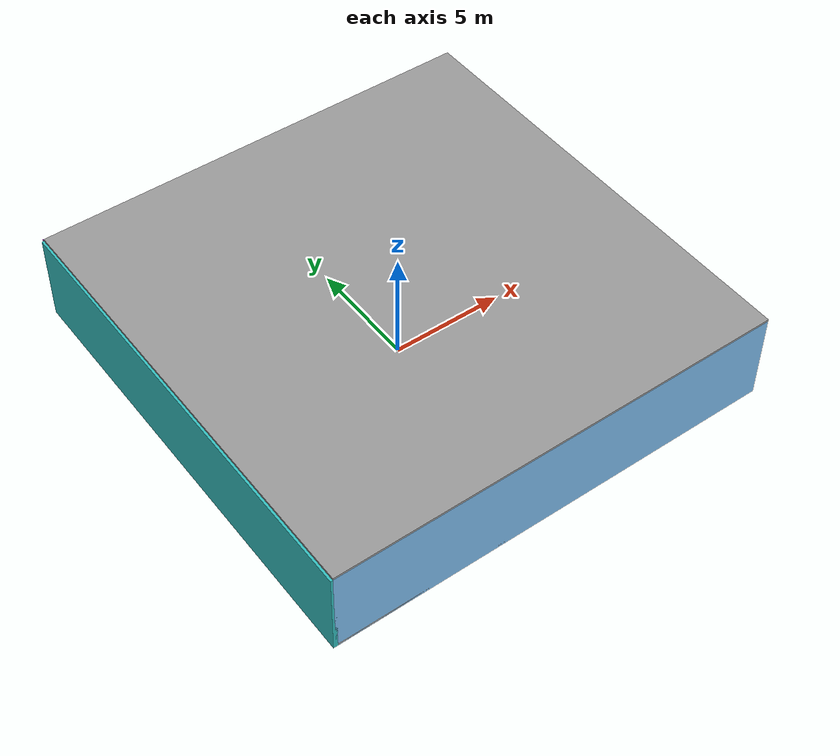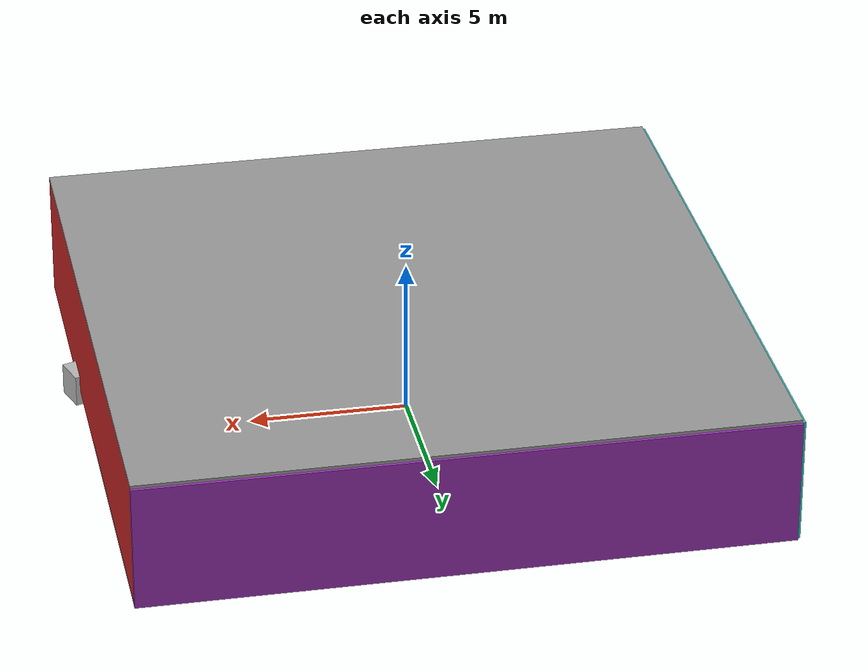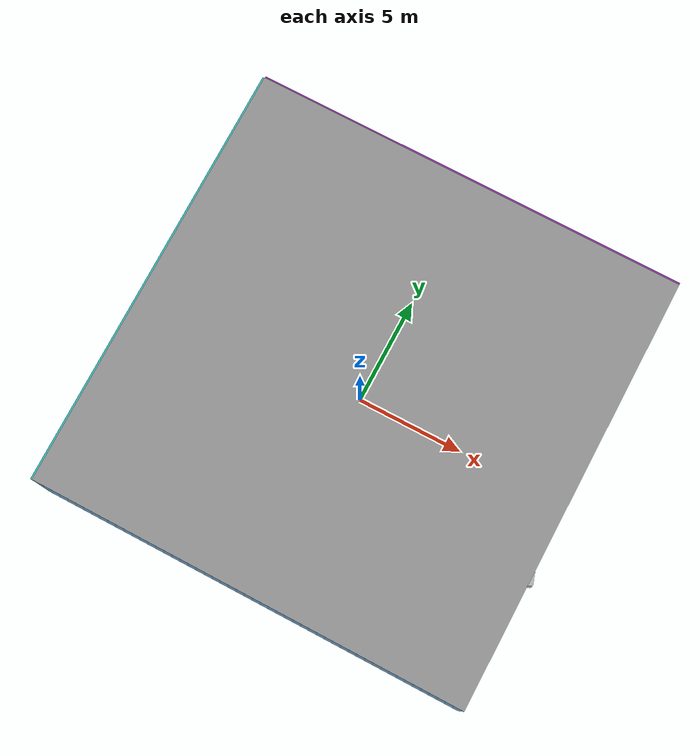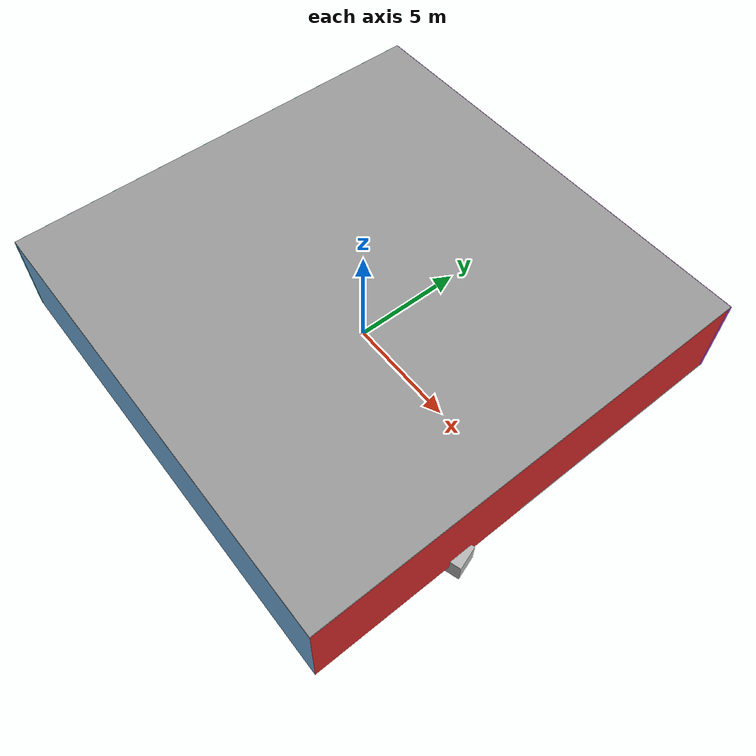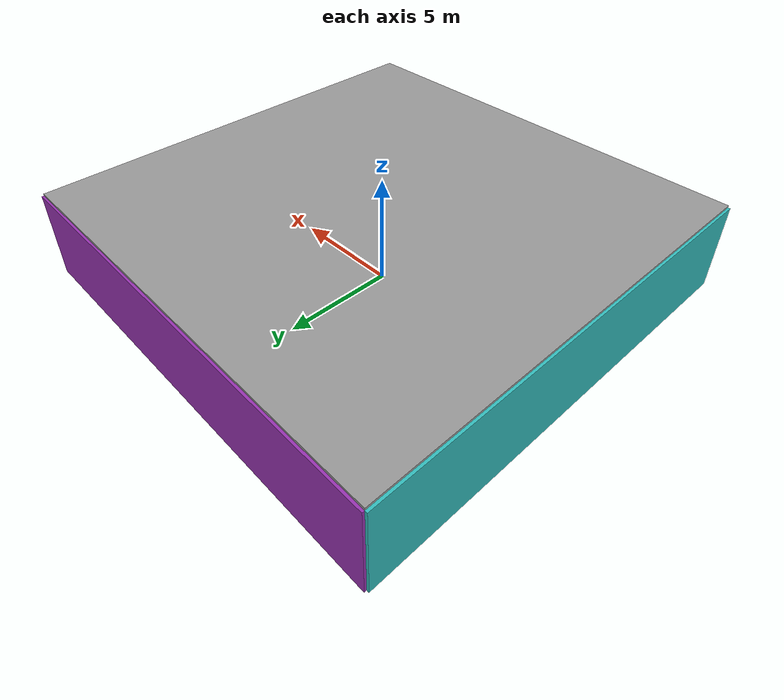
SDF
<sdf version="1.4">
 <world name="default">
  <physics type="ode">
   <max_step_size>0.001</max_step_size>
   <real_time_factor>1</real_time_factor>
   <real_time_update_rate>1000</real_time_update_rate>
   <gravity>0 0 -9.8</gravity>
  </physics>
  <scene><ambient>0.4 0.4 0.4 1</ambient><background>0.7 0.7 0.7 1</background><shadows>1</shadows></scene>
  <model name="Surrounding">
   <static>1</static>
   <link name="Ceiling">
    <collision name="Ceiling_Collision"><geometry><box><size>20 20 0.1</size></box></geometry></collision>
    <visual name="Ceiling_Visual">
     <geometry><box><size>20 20 0.1</size></box></geometry>
     <material>
      <script><uri>file://media/materials/scripts/gazebo.material</uri><name>Gazebo/Grey</name></script>
     </material>
    </visual>
    <pose>0 0 4.05 0 0 0</pose>
   </link>
   <link name="Wall_South">
    <collision name="Wall_South_Collision">
     <geometry><box><size>20 0 4</size></box></geometry>
     <pose>0 0 2 0 -0 0</pose>
    </collision>
    <visual name="Wall_South_Visual">
     <pose>0 0 2 0 -0 0</pose>
     <geometry><box><size>20 0 4</size></box></geometry>
     <material>
      <script><uri>file://media/materials/scripts/gazebo.material</uri><name>Gazebo/SkyBlue</name></script>
     </material>
    </visual>
    <velocity_decay><linear>0</linear><angular>0</angular></velocity_decay>
    <pose>0 -10 0 0 -0 0</pose>
   </link>
   <link name="Wall_East">
    <collision name="Wall_21_Collision">
     <geometry><box><size>20 0 4</size></box></geometry>
     <pose>0 0 2 0 -0 0</pose>
    </collision>
    <visual name="Wall_21_Visual">
     <pose>0 0 2 0 -0 0</pose>
     <geometry><box><size>20 0 4</size></box></geometry>
     <material>
      <script><uri>file://media/materials/scripts/gazebo.material</uri><name>Gazebo/RedGlow</name></script>
     </material>
    </visual>
    <velocity_decay><linear>0</linear><angular>0</angular></velocity_decay>
    <pose>10 0 0 0 -0 1.5708</pose>
   </link>
   <link name="Wall_North">
    <collision name="Wall_22_Collision">
     <geometry><box><size>20 0.2 4</size></box></geometry>
     <pose>0 0 2 0 -0 0</pose>
    </collision>
    <visual name="Wall_22_Visual">
     <pose>0 0 2 0 -0 0</pose>
     <geometry><box><size>20 0.2 4</size></box></geometry>
     <material>
      <script><uri>file://media/materials/scripts/gazebo.material</uri><name>Gazebo/PurpleGlow</name></script>
     </material>
    </visual>
    <velocity_decay><linear>0</linear><angular>0</angular></velocity_decay>
    <pose>0 10 0 0 -0 0</pose>
   </link>
   <link name="Wall_West">
    <collision name="Wall_23_Collision">
     <geometry><box><size>20 0.2 4</size></box></geometry>
     <pose>0 0 2 0 -0 0</pose>
    </collision>
    <visual name="Wall_23_Visual">
     <pose>0 0 2 0 -0 0</pose>
     <geometry><box><size>20 0.2 4</size></box></geometry>
     <material>
      <script><uri>file://media/materials/scripts/gazebo.material</uri><name>Gazebo/Turquoise</name></script>
     </material>
    </visual>
    <velocity_decay><linear>0</linear><angular>0</angular></velocity_decay>
    <pose>-10 0 0 0 0 -1.5708</pose>
   </link>
   <link name="Ground_link">
    <collision name="collision">
     <pose>0 0 .05 0 -0 0</pose>
     <geometry><box><size>20 20 0.1</size></box></geometry>
    </collision>
    <visual name="visual">
     <pose>0 0 .05 0 -0 0</pose>
     <geometry><box><size>20 20 0.1</size></box></geometry>
     <material>
      <script><uri>file://media/materials/scripts/gazebo.material</uri><name>Gazebo/Pioneer2Body</name></script>
     </material>
    </visual>
   </link>
   <static>1</static>
  </model>
  <spherical_coordinates>
   <surface_model>EARTH_WGS84</surface_model>
   <latitude_deg>0</latitude_deg>
   <longitude_deg>0</longitude_deg>
   <elevation>0</elevation>
   <heading_deg>0</heading_deg>
  </spherical_coordinates>
  <light name="lightball_0" type="diffuse">
   <diffuse>0.8 0.8 0.8 1</diffuse>
   <specular>0.2 0.2 0.2 1</specular>
   <attenuation>
    <range>100</range>
    <constant>0.7</constant>
    <linear>0.01</linear>
    <quadratic>0.001</quadratic>
   </attenuation>
   <direction>-0.5 0.1 -0.9</direction>
   <pose>-9.74993155016 -4.28257704943 2.54590768407 0 0 0</pose>
  </light>
  <light name="lightball_1" type="diffuse">
   <diffuse>0.8 0.8 0.8 1</diffuse>
   <specular>0.2 0.2 0.2 1</specular>
   <attenuation>
    <range>100</range>
    <constant>0.7</constant>
    <linear>0.01</linear>
    <quadratic>0.001</quadratic>
   </attenuation>
   <direction>-0.5 0.1 -0.9</direction>
   <pose>9.03772459636 8.22838882377 2.71462581 0 0 0</pose>
  </light>
  <light name="lightball_2" type="diffuse">
   <diffuse>0.8 0.8 0.8 1</diffuse>
   <specular>0.2 0.2 0.2 1</specular>
   <attenuation>
    <range>100</range>
    <constant>0.7</constant>
    <linear>0.01</linear>
    <quadratic>0.001</quadratic>
   </attenuation>
   <direction>-0.5 0.1 -0.9</direction>
   <pose>-3.47267396041 0.706560026569 2.05028984228 0 0 0</pose>
  </light>
  <light name="lightball_3" type="diffuse">
   <diffuse>0.8 0.8 0.8 1</diffuse>
   <specular>0.2 0.2 0.2 1</specular>
   <attenuation>
    <range>100</range>
    <constant>0.7</constant>
    <linear>0.01</linear>
    <quadratic>0.001</quadratic>
   </attenuation>
   <direction>-0.5 0.1 -0.9</direction>
   <pose>2.29032495568 -2.07693481695 3.35826471124 0 0 0</pose>
  </light>
  <light name="lightball_4" type="diffuse">
   <diffuse>0.8 0.8 0.8 1</diffuse>
   <specular>0.2 0.2 0.2 1</specular>
   <attenuation>
    <range>100</range>
    <constant>0.7</constant>
    <linear>0.01</linear>
    <quadratic>0.001</quadratic>
   </attenuation>
   <direction>-0.5 0.1 -0.9</direction>
   <pose>0.866242597534 -5.12262692183 3.71147299633 0 0 0</pose>
  </light>
  <include>
   <uri>model://robocup_3Dsim_goal</uri>
   <pose>-0.571101262761 -7.69070103051 0 0 0 0.234480703572</pose>
  </include>
  <include><uri>model://table</uri><pose>-2.63655247598 1.13683047627 0 0 0 2.00167958669</pose></include>
  <include>
   <uri>model://construction_cone</uri>
   <pose>-1.89287719041 3.42087809336 0 0 0 0.853504511949</pose>
  </include>
  <include>
   <uri>model://textured_shapes</uri>
   <pose>8.38256199133 -3.96175094341 0 0 0 1.87563373015</pose>
  </include>
  <include><uri>model://table</uri><pose>8.51348823793 -1.89767353662 0 0 0 0.701184531133</pose></include>
 </world>
</sdf>

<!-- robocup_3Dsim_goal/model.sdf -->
<sdf version="1.5">
  <model name="robocup_3d_goal">
    <static>true</static>
    <link name="left_post">
      <pose>0 1.05 0.45 0 0 0</pose>
      <collision name="collision">
        <geometry>
          <cylinder>
            <radius>0.05</radius>
            <length>0.9</length>
          </cylinder>
        </geometry>
      </collision>
      <visual name="visual">
        <geometry>
          <cylinder>
            <radius>0.05</radius>
            <length>0.9</length>
          </cylinder>
        </geometry>
        <material>
          <script>
            <uri>file://media/materials/scripts/gazebo.material</uri>
            <name>Gazebo/ZincYellow</name>
          </script>
        </material>
      </visual>
    </link>
    <link name="left_support_horiz_lower">
      <pose>0.30 1.05 0.01 0 0 0</pose>
      <collision name="collision">
        <geometry>
          <box>
            <size>0.50 0.02 0.02</size>
          </box>
        </geometry>
      </collision>
      <visual name="visual">
        <geometry>
          <box>
            <size>0.50 0.02 0.02</size>
          </box>
        </geometry>
        <material>
          <script>
            <uri>file://media/materials/scripts/gazebo.material</uri>
            <name>Gazebo/White</name>
          </script>
        </material>
      </visual>
    </link>
    <link name="left_support_horiz_upper">
      <pose>0.30 1.05 0.79 0 0 0</pose>
      <collision name="collision">
        <geometry>
          <box>
            <size>0.50 0.02 0.02</size>
          </box>
        </geometry>
      </collision>
      <visual name="visual">
        <geometry>
          <box>
            <size>0.50 0.02 0.02</size>
          </box>
        </geometry>
        <material>
          <script>
            <uri>file://media/materials/scripts/gazebo.material</uri>
            <name>Gazebo/White</name>
          </script>
        </material>
      </visual>
    </link>
    <link name="left_support_vertical">
      <pose>0.56 1.05 0.4 0 1.5708 0</pose>
      <collision name="collision">
        <geometry>
          <box>
            <size>0.80 0.02 0.02</size>
          </box>
        </geometry>
      </collision>
      <visual name="visual">
        <geometry>
          <box>
            <size>0.80 0.02 0.02</size>
          </box>
        </geometry>
        <material>
          <script>
            <uri>file://media/materials/scripts/gazebo.material</uri>
            <name>Gazebo/White</name>
          </script>
        </material>
      </visual>
    </link>
    <link name="right_support_horiz_lower">
      <pose>0.30 -1.05 0.01 0 0 0</pose>
      <collision name="collision">
        <geometry>
          <box>
            <size>0.50 0.02 0.02</size>
          </box>
        </geometry>
      </collision>
      <visual name="visual">
        <geometry>
          <box>
            <size>0.50 0.02 0.02</size>
          </box>
        </geometry>
        <material>
          <script>
            <uri>file://media/materials/scripts/gazebo.material</uri>
            <name>Gazebo/White</name>
          </script>
        </material>
      </visual>
    </link>
    <link name="right_support_horiz_upper">
      <pose>0.30 -1.05 0.79 0 0 0</pose>
      <collision name="collision">
        <geometry>
          <box>
            <size>0.50 0.02 0.02</size>
          </box>
        </geometry>
      </collision>
      <visual name="visual">
        <geometry>
          <box>
            <size>0.50 0.02 0.02</size>
          </box>
        </geometry>
        <material>
          <script>
            <uri>file://media/materials/scripts/gazebo.material</uri>
            <name>Gazebo/White</name>
          </script>
        </material>
      </visual>
    </link>
    <link name="right_support_vertical">
      <pose>0.56 -1.05 0.4 0 1.5708 0</pose>
      <collision name="collision">
        <geometry>
          <box>
            <size>0.80 0.02 0.02</size>
          </box>
        </geometry>
      </collision>
      <visual name="visual">
        <geometry>
          <box>
            <size>0.80 0.02 0.02</size>
          </box>
        </geometry>
        <material>
          <script>
            <uri>file://media/materials/scripts/gazebo.material</uri>
            <name>Gazebo/White</name>
          </script>
        </material>
      </visual>
    </link>
    <link name="center_support_horiz_lower">
      <pose>0.56 0 0.01 0 1.5708 0</pose>
      <collision name="collision">
        <geometry>
          <box>
            <size>0.02 2.08 0.02</size>
          </box>
        </geometry>
      </collision>
      <visual name="visual">
        <geometry>
          <box>
            <size>0.02 2.08 0.02</size>
          </box>
        </geometry>
        <material>
          <script>
            <uri>file://media/materials/scripts/gazebo.material</uri>
            <name>Gazebo/White</name>
          </script>
        </material>
      </visual>
    </link>
    <link name="center_support_horiz_upper">
      <pose>0.56 0 0.79 0 1.5708 0</pose>
      <collision name="collision">
        <geometry>
          <box>
            <size>0.02 2.08 0.02</size>
          </box>
        </geometry>
      </collision>
      <visual name="visual">
        <geometry>
          <box>
            <size>0.02 2.08 0.02</size>
          </box>
        </geometry>
        <material>
          <script>
            <uri>file://media/materials/scripts/gazebo.material</uri>
            <name>Gazebo/White</name>
          </script>
        </material>
      </visual>
    </link>
    <link name="right_post">
      <pose>0 -1.05 0.45 0 0 0</pose>
      <collision name="collision">
        <geometry>
          <cylinder>
            <radius>0.05</radius>
            <length>0.9</length>
          </cylinder>
        </geometry>
      </collision>
      <visual name="visual">
        <geometry>
          <cylinder>
            <radius>0.05</radius>
            <length>0.9</length>
          </cylinder>
        </geometry>
        <material>
          <script>
            <uri>file://media/materials/scripts/gazebo.material</uri>
            <name>Gazebo/ZincYellow</name>
          </script>
        </material>
      </visual>
    </link>
    <link name="crossbar">
      <pose>0 0 0.85 1.57 1.57 0</pose>
      <collision name="collision">
        <geometry>
          <cylinder>
            <radius>0.05</radius>
            <length>2.0</length>
          </cylinder>
        </geometry>
      </collision>
      <visual name="visual">
        <geometry>
          <cylinder>
            <radius>0.05</radius>
            <length>2.0</length>
          </cylinder>
        </geometry>
        <material>
          <script>
            <uri>file://media/materials/scripts/gazebo.material</uri>
            <name>Gazebo/ZincYellow</name>
          </script>
        </material>
      </visual>
    </link>
    <link name="center_net">
      <pose>0.56 0 0.40 0 0 0</pose>
      <collision name="collision">
        <geometry>
          <box>
            <size>0.01 2.1 0.80</size>
          </box>
        </geometry>
      </collision>
      <visual name="visual">
        <geometry>
          <box>
            <size>0.01 2.1 0.80</size>
          </box>
        </geometry>
        <material>
          <script>
            <uri>model://../model_source/models/robocup09_spl_field/materials/scripts/</uri>
            <uri>model://../model_source/models/robocup09_spl_field/materials/textures/</uri>
            <name>RoboCup/Net</name>
          </script>
        </material>
      </visual>
    </link>
    <link name="left_net">
      <pose>0.30 1.05 0.40 0 0 0</pose>
      <collision name="collision">
        <geometry>
          <box>
            <size>0.50 0.01 0.76</size>
          </box>
        </geometry>
      </collision>
      <visual name="visual">
        <geometry>
          <box>
            <size>0.50 0.01 0.76</size>
          </box>
        </geometry>
        <material>
          <script>
            <uri>model://../model_source/models/robocup09_spl_field/materials/scripts/</uri>
            <uri>model://../model_source/models/robocup09_spl_field/materials/textures/</uri>
            <name>RoboCup/Net</name>
          </script>
        </material>
      </visual>
    </link>
    <link name="right_net">
      <pose>0.30 -1.05 0.40 0 0 0</pose>
      <collision name="collision">
        <geometry>
          <box>
            <size>0.50 0.01 0.76</size>
          </box>
        </geometry>
      </collision>
      <visual name="visual">
        <geometry>
          <box>
            <size>0.50 0.01 0.76</size>
          </box>
        </geometry>
        <material>
          <script>
            <uri>model://../model_source/models/robocup09_spl_field/materials/scripts/</uri>
            <uri>model://../model_source/models/robocup09_spl_field/materials/textures/</uri>
            <name>RoboCup/Net</name>
          </script>
        </material>
      </visual>
    </link>
  </model>
</sdf>

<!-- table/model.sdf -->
<sdf version="1.5">
  <model name="table">
    <static>true</static>
    <link name="link">
      <collision name="surface">
        <pose>0 0 1.0 0 0 0</pose>
        <geometry>
          <box>
            <size>1.5 0.8 0.03</size>
          </box>
        </geometry>
        <surface>
          <friction>
            <ode>
              <mu>0.6</mu>
              <mu2>0.6</mu2>
            </ode>
          </friction>
        </surface>
      </collision>
      <visual name="visual1">
        <pose>0 0 1.0 0 0 0</pose>
        <geometry>
          <box>
            <size>1.5 0.8 0.03</size>
          </box>
        </geometry>
        <material>
          <script>
            <uri>model://media/materials/scripts/gazebo.material</uri>
            <name>Gazebo/Wood</name>
          </script>
        </material>
      </visual>
      <collision name="front_left_leg">
        <pose>0.68 0.38 0.5 0 0 0</pose>
        <geometry>
          <cylinder>
            <radius>0.02</radius>
            <length>1.0</length>
          </cylinder>
        </geometry>
      </collision>
      <visual name="front_left_leg">
        <pose>0.68 0.38 0.5 0 0 0</pose>
        <geometry>
          <cylinder>
            <radius>0.02</radius>
            <length>1.0</length>
          </cylinder>
        </geometry>
        <material>
          <script>
            <uri>model://media/materials/scripts/gazebo.material</uri>
            <name>Gazebo/Grey</name>
          </script>
        </material>
      </visual>
      <collision name="front_right_leg">
        <pose>0.68 -0.38 0.5 0 0 0</pose>
        <geometry>
          <cylinder>
            <radius>0.02</radius>
            <length>1.0</length>
          </cylinder>
        </geometry>
      </collision>
      <visual name="front_right_leg">
        <pose>0.68 -0.38 0.5 0 0 0</pose>
        <geometry>
          <cylinder>
            <radius>0.02</radius>
            <length>1.0</length>
          </cylinder>
        </geometry>
        <material>
          <script>
            <uri>model://media/materials/scripts/gazebo.material</uri>
            <name>Gazebo/Grey</name>
          </script>
        </material>
      </visual>
      <collision name="back_right_leg">
        <pose>-0.68 -0.38 0.5 0 0 0</pose>
        <geometry>
          <cylinder>
            <radius>0.02</radius>
            <length>1.0</length>
          </cylinder>
        </geometry>
      </collision>
      <visual name="back_right_leg">
        <pose>-0.68 -0.38 0.5 0 0 0</pose>
        <geometry>
          <cylinder>
            <radius>0.02</radius>
            <length>1.0</length>
          </cylinder>
        </geometry>
        <material>
          <script>
            <uri>model://media/materials/scripts/gazebo.material</uri>
            <name>Gazebo/Grey</name>
          </script>
        </material>
      </visual>
      <collision name="back_left_leg">
        <pose>-0.68 0.38 0.5 0 0 0</pose>
        <geometry>
          <cylinder>
            <radius>0.02</radius>
            <length>1.0</length>
          </cylinder>
        </geometry>
      </collision>
      <visual name="back_left_leg">
        <pose>-0.68 0.38 0.5 0 0 0</pose>
        <geometry>
          <cylinder>
            <radius>0.02</radius>
            <length>1.0</length>
          </cylinder>
        </geometry>
        <material>
          <script>
            <uri>model://media/materials/scripts/gazebo.material</uri>
            <name>Gazebo/Grey</name>
          </script>
        </material>
      </visual>
    </link>
  </model>
</sdf>

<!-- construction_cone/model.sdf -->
<sdf version="1.5">
  <model name="Construction Cone">
    <link name="link">
      <collision name="collision">
        <geometry>
          <mesh>
            <scale>10 10 10</scale>
            <uri>file://isr-testbed/construction_cone/meshes/construction_cone.dae</uri>
          </mesh>
        </geometry>
      </collision>
      <visual name="visual">
        <geometry>
          <mesh>
            <scale>10 10 10</scale>
            <uri>file://isr-testbed/construction_cone/meshes/construction_cone.dae</uri>
          </mesh>
        </geometry>
      </visual>
    </link>
  </model>
</sdf>

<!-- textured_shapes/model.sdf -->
<sdf version="1.6">
  <model name="textured_shapes">
    <pose>0 0 0.5 0 0 0</pose>
    <link name="box">
      <pose>0 -1.5 0 0 0 0</pose>
      <collision name="collision">
        <geometry>
          <box>
            <size>1 1 1</size>
          </box>
        </geometry>
      </collision>
      <visual name="visual">
        <geometry>
          <box>
            <size>1 1 1</size>
          </box>
        </geometry>
        <material>
          <script>
            <uri>model://../model_source/models/textured_shapes/materials/scripts</uri>
            <uri>model://../model_source/models/textured_shapes/materials/textures</uri>
            <name>TexturedShape/Squares</name>
          </script>
        </material>
      </visual>
    </link>
    <link name="sphere">
      <collision name="collision">
        <geometry>
          <sphere>
            <radius>0.5</radius>
          </sphere>
        </geometry>
      </collision>
      <visual name="visual">
        <geometry>
          <sphere>
            <radius>0.5</radius>
          </sphere>
        </geometry>
        <material>
          <script>
            <uri>model://../model_source/models/textured_shapes/materials/scripts</uri>
            <uri>model://../model_source/models/textured_shapes/materials/textures</uri>
            <name>TexturedShape/Squares</name>
          </script>
        </material>
      </visual>
    </link>
    <link name="cylinder">
      <pose>0 1.5 0 0 0 0</pose>
      <collision name="collision">
        <geometry>
          <cylinder>
            <radius>0.5</radius>
            <length>1</length>
          </cylinder>
        </geometry>
      </collision>
      <visual name="visual">
        <geometry>
          <cylinder>
            <radius>0.5</radius>
            <length>1</length>
          </cylinder>
        </geometry>
        <material>
          <script>
            <uri>model://../model_source/models/textured_shapes/materials/scripts</uri>
            <uri>model://../model_source/models/textured_shapes/materials/textures</uri>
            <name>TexturedShape/Squares</name>
          </script>
        </material>
      </visual>
    </link>
  </model>
</sdf>
